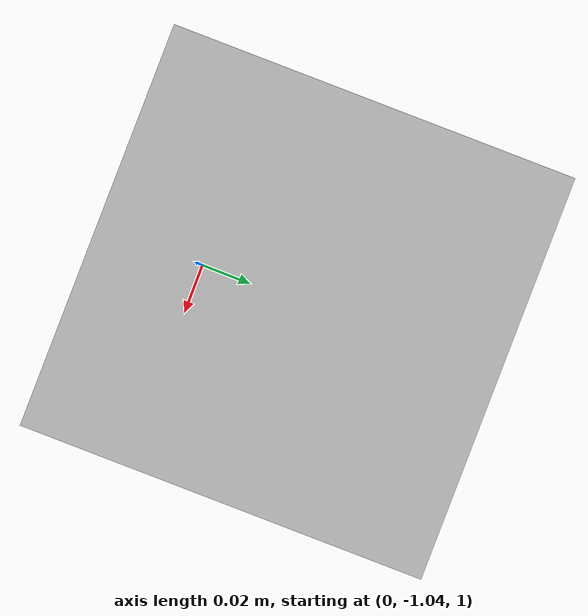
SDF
<?xml version="1.0" ?>
<sdf version="1.4">
 <world name="default">
 <include>
   <uri>model://ground_plane</uri>
 </include>

 <include>
   <uri>model://sun</uri>
 </include>

 <!-- reference to your plugin -->
 <model name='camera'>
   <pose>0 -1 1.05 0 -0 0</pose>
   <link name='link'>
     <inertial>
       <mass>0.1</mass>
       <inertia>
         <ixx>1</ixx>
         <ixy>0</ixy>
         <ixz>0</ixz>
         <iyy>1</iyy>
         <iyz>0</iyz>
         <izz>1</izz>
       </inertia>
     </inertial>
     <collision name='collision'>
       <geometry>
         <box>
            <size>0.1 0.1 0.1</size>
         </box>
       </geometry>
       <max_contacts>10</max_contacts>
       <surface>
         <contact>
           <ode/>
         </contact>
         <bounce/>
         <friction>
           <ode/>
         </friction>
       </surface>
     </collision>
     <visual name='visual'>
       <geometry>
         <box>
           <size>0.1 0.1 0.1</size>
         </box>
       </geometry>
     </visual>
     <sensor name='camera' type='camera'>
       <camera name='__default__'>
         <horizontal_fov>1.047</horizontal_fov>
         <image>
           <width>320</width>
           <height>240</height>
         </image>
         <clip>
           <near>0.1</near>
           <far>100</far>
         </clip>
       </camera>
       <plugin name="camera_plugin" filename="libcamera_plugin.so">
         <cameraName>camera</cameraName>
         <alwaysOn>true</alwaysOn>
         <updateRate>10</updateRate>
         <imageTopicName>rgb/image_raw</imageTopicName>
         <depthImageTopicName>depth/image_raw</depthImageTopicName>
         <pointCloudTopicName>depth/points</pointCloudTopicName>
         <cameraInfoTopicName>rgb/camera_info</cameraInfoTopicName>
         <depthImageCameraInfoTopicName>depth/camera_info</depthImageCameraInfoTopicName>
         <frameName>camera_depth_optical_frame</frameName>
         <baseline>0.1</baseline>
         <distortion_k1>0.0</distortion_k1>
         <distortion_k2>0.0</distortion_k2>
         <distortion_k3>0.0</distortion_k3>
         <distortion_t1>0.0</distortion_t1>
         <distortion_t2>0.0</distortion_t2>
         <pointCloudCutoff>0.4</pointCloudCutoff>
         <robotNamespace>/</robotNamespace>
       </plugin>
     </sensor>
     <self_collide>0</self_collide>
     <kinematic>0</kinematic>
     <gravity>0</gravity>                           //make sure to TURN OFF GRAVITY
   </link>
 </model>
 </world>
</sdf>
